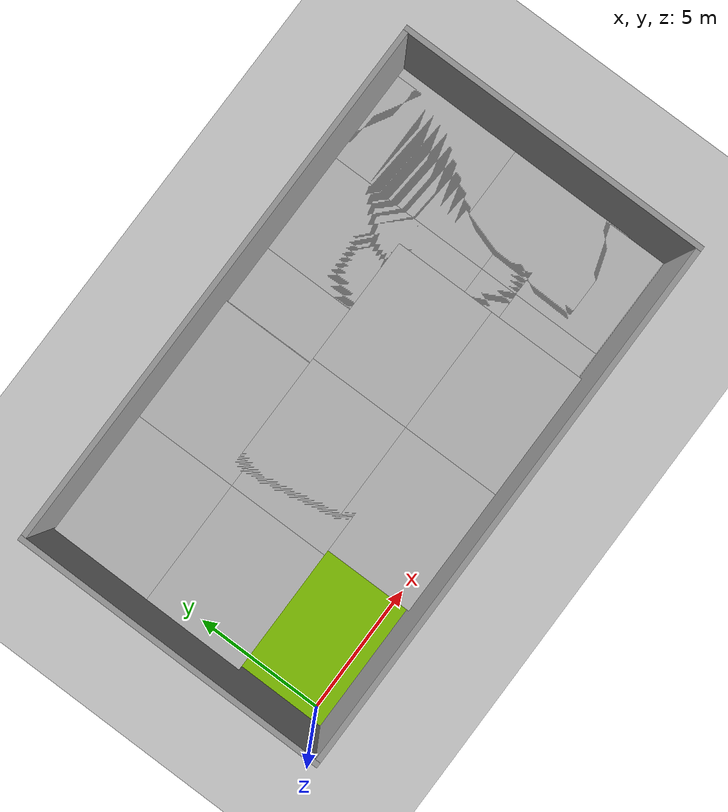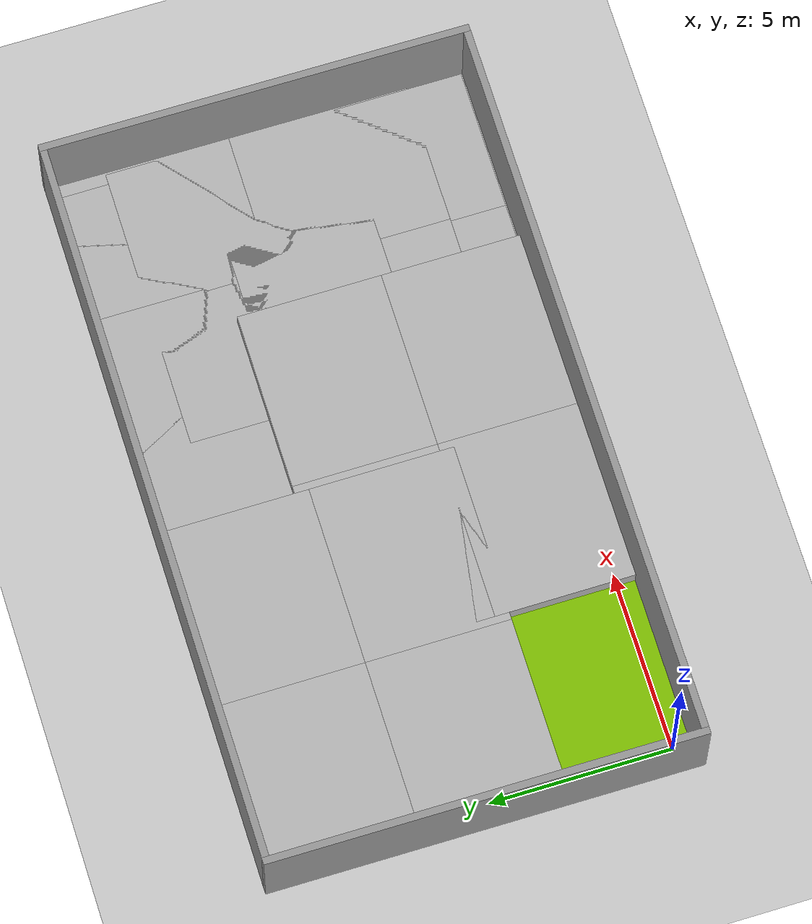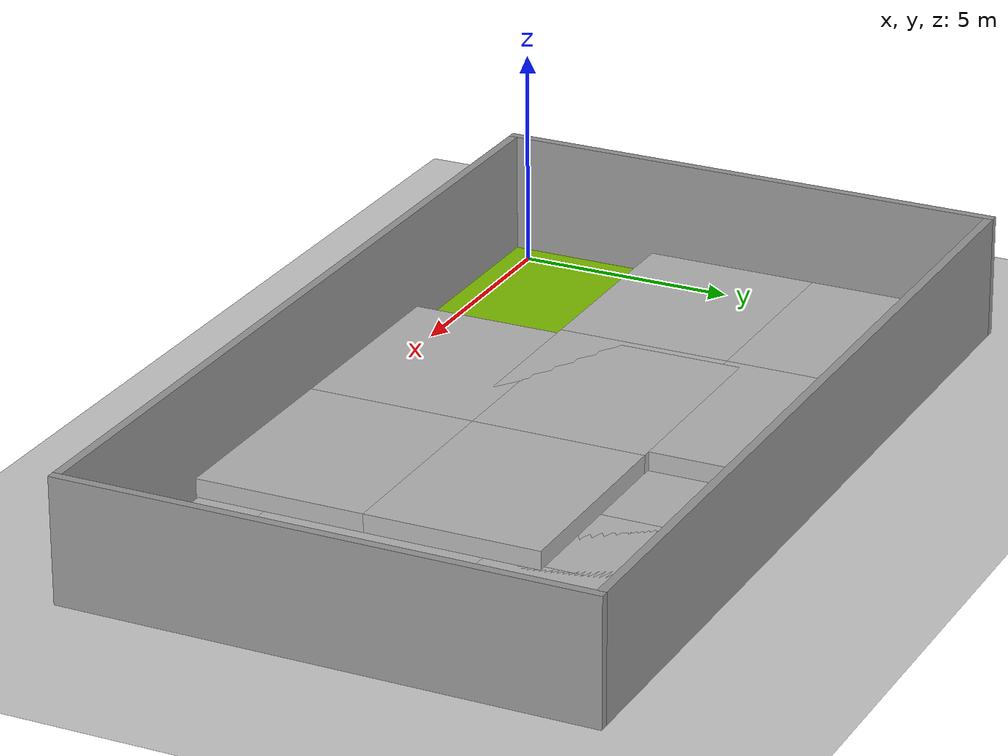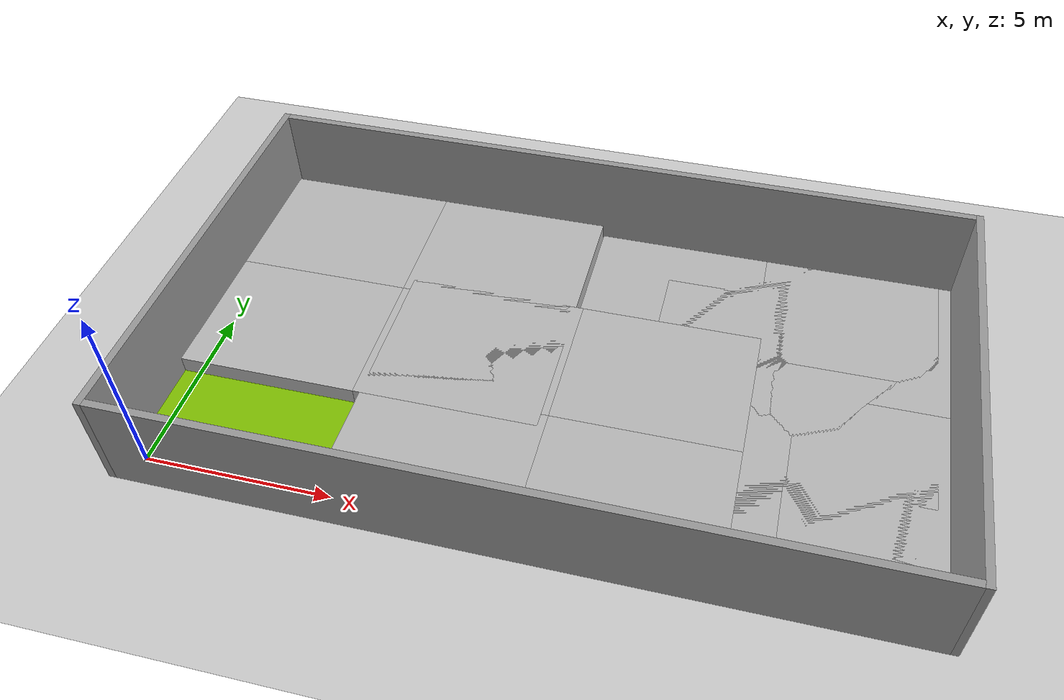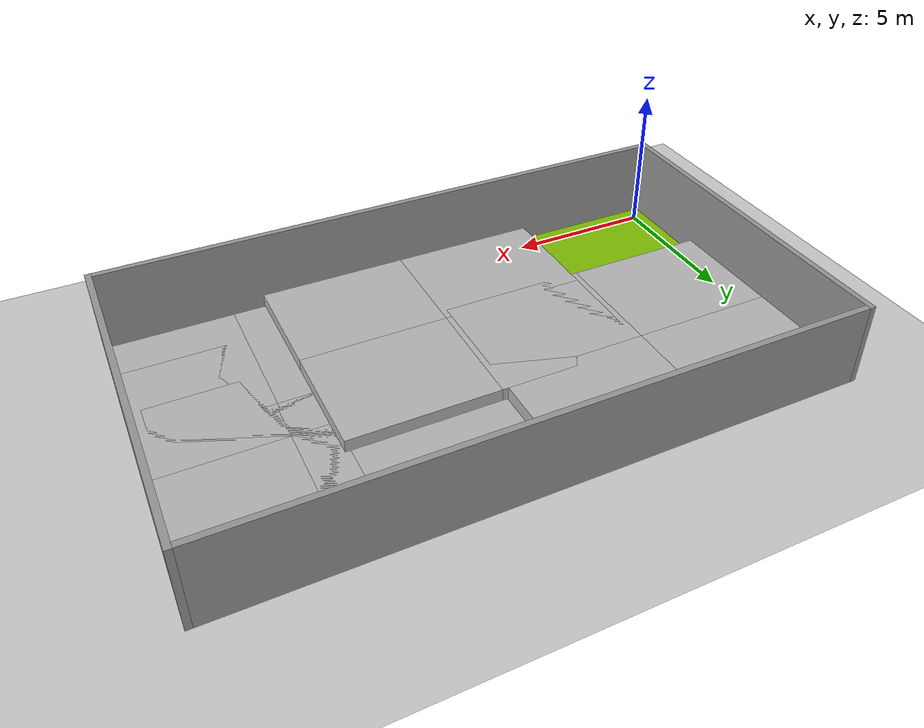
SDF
<sdf version="1.6">
 <world name="default">
  <light name="sun" type="directional">
   <pose>0 0 10 0 -0 0</pose>
   <diffuse>0.8 0.8 0.8 1</diffuse>
   <specular>0.2 0.2 0.2 1</specular>
   <attenuation>
    <range>1000</range>
    <constant>0.9</constant>
    <linear>0.01</linear>
    <quadratic>0.001</quadratic>
   </attenuation>
   <direction>-0.5 0.1 -0.9</direction>
  </light>
  <model name="ground_plane">
   <static>1</static>
   <link name="link">
    <collision name="collision">
     <geometry><plane><normal>0 0 1</normal><size>100 100</size></plane></geometry>
     <surface><friction><ode><mu>100</mu><mu2>50</mu2></ode></friction></surface>
    </collision>
    <visual name="visual">
     <cast_shadows>0</cast_shadows>
     <geometry><plane><normal>0 0 1</normal><size>100 100</size></plane></geometry>
     <material>
      <script><uri>file://media/materials/scripts/gazebo.material</uri><name>Gazebo/Grey</name></script>
     </material>
    </visual>
   </link>
  </model>
  <gravity>0 0 -9.8</gravity>
  <magnetic_field>6e-06 2.3e-05 -4.2e-05</magnetic_field>
  <atmosphere type="adiabatic"/>
  <physics name="default_physics" default="0" type="ode">
   <max_step_size>0.001</max_step_size>
   <real_time_factor>1</real_time_factor>
   <real_time_update_rate>1000</real_time_update_rate>
  </physics>
  <scene><ambient>0.4 0.4 0.4 1</ambient><background>0.7 0.7 0.7 1</background><shadows>1</shadows></scene>
  <audio><device>default</device></audio>
  <spherical_coordinates>
   <surface_model>EARTH_WGS84</surface_model>
   <latitude_deg>0</latitude_deg>
   <longitude_deg>0</longitude_deg>
   <elevation>0</elevation>
   <heading_deg>0</heading_deg>
  </spherical_coordinates>
  <model name="grey_wall_extended">
   <link name="link">
    <pose>0 0 1.4 0 -0 0</pose>
    <inertial>
     <inertia><ixx>0</ixx><ixy>0</ixy><ixz>0</ixz><iyy>0</iyy><iyz>0</iyz><izz>0</izz></inertia>
     <mass>0</mass>
    </inertial>
    <visual name="visual">
     <cast_shadows>0</cast_shadows>
     <geometry><box><size>20.2467 0.2 2.8</size></box></geometry>
     <material>
      <script>
       <uri>model://grey_wall/materials/scripts</uri>
       <uri>model://grey_wall/materials/textures</uri>
       <name>vrc/grey_wall</name>
      </script>
     </material>
    </visual>
    <collision name="collision">
     <geometry><box><size>20.2467 0.2 2.8</size></box></geometry>
     <surface>
      <friction>
       <ode><mu>1</mu><mu2>1</mu2><fdir1>0 0 0</fdir1><slip1>0</slip1><slip2>0</slip2></ode>
       <torsional>
        <coefficient>1</coefficient>
        <patch_radius>0</patch_radius>
        <surface_radius>0</surface_radius>
        <use_patch_radius>1</use_patch_radius>
        <ode><slip>0</slip></ode>
       </torsional>
      </friction>
      <bounce><restitution_coefficient>0</restitution_coefficient><threshold>1e+06</threshold></bounce>
      <contact>
       <collide_without_contact>0</collide_without_contact>
       <collide_without_contact_bitmask>1</collide_without_contact_bitmask>
       <collide_bitmask>1</collide_bitmask>
       <ode>
        <soft_cfm>0</soft_cfm>
        <soft_erp>0.2</soft_erp>
        <kp>1e+13</kp>
        <kd>1</kd>
        <max_vel>0.01</max_vel>
        <min_depth>0</min_depth>
       </ode>
       <bullet>
        <split_impulse>1</split_impulse>
        <split_impulse_penetration_threshold>-0.01</split_impulse_penetration_threshold>
        <soft_cfm>0</soft_cfm>
        <soft_erp>0.2</soft_erp>
        <kp>1e+13</kp>
        <kd>1</kd>
       </bullet>
      </contact>
     </surface>
    </collision>
   </link>
   <static>1</static>
   <pose>9.70633 11.1221 0 0 -0 0</pose>
  </model>
  <model name="grey_wall_extended_0">
   <link name="link">
    <pose>0 0 1.4 0 -0 0</pose>
    <inertial>
     <inertia><ixx>0</ixx><ixy>0</ixy><ixz>0</ixz><iyy>0</iyy><iyz>0</iyz><izz>0</izz></inertia>
     <mass>0</mass>
    </inertial>
    <visual name="visual">
     <cast_shadows>0</cast_shadows>
     <geometry><box><size>20.2467 0.2 2.8</size></box></geometry>
     <material>
      <script>
       <uri>model://grey_wall/materials/scripts</uri>
       <uri>model://grey_wall/materials/textures</uri>
       <name>vrc/grey_wall</name>
      </script>
     </material>
    </visual>
    <collision name="collision">
     <geometry><box><size>20.2467 0.2 2.8</size></box></geometry>
     <surface>
      <friction>
       <ode><mu>1</mu><mu2>1</mu2><fdir1>0 0 0</fdir1><slip1>0</slip1><slip2>0</slip2></ode>
       <torsional>
        <coefficient>1</coefficient>
        <patch_radius>0</patch_radius>
        <surface_radius>0</surface_radius>
        <use_patch_radius>1</use_patch_radius>
        <ode><slip>0</slip></ode>
       </torsional>
      </friction>
      <bounce><restitution_coefficient>0</restitution_coefficient><threshold>1e+06</threshold></bounce>
      <contact>
       <collide_without_contact>0</collide_without_contact>
       <collide_without_contact_bitmask>1</collide_without_contact_bitmask>
       <collide_bitmask>1</collide_bitmask>
       <ode>
        <soft_cfm>0</soft_cfm>
        <soft_erp>0.2</soft_erp>
        <kp>1e+13</kp>
        <kd>1</kd>
        <max_vel>0.01</max_vel>
        <min_depth>0</min_depth>
       </ode>
       <bullet>
        <split_impulse>1</split_impulse>
        <split_impulse_penetration_threshold>-0.01</split_impulse_penetration_threshold>
        <soft_cfm>0</soft_cfm>
        <soft_erp>0.2</soft_erp>
        <kp>1e+13</kp>
        <kd>1</kd>
       </bullet>
      </contact>
     </surface>
    </collision>
   </link>
   <static>1</static>
   <pose>9.67012 -0.596726 0 0 -0 0</pose>
  </model>
  <model name="grey_wall_extended_2_0">
   <link name="link">
    <pose>4.15817 -8.6e-05 1.4 0 -0 0</pose>
    <inertial>
     <inertia><ixx>0</ixx><ixy>0</ixy><ixz>0</ixz><iyy>0</iyy><iyz>0</iyz><izz>0</izz></inertia>
     <mass>0</mass>
    </inertial>
    <visual name="visual">
     <cast_shadows>0</cast_shadows>
     <geometry><box><size>11.9182 0.2 2.8</size></box></geometry>
     <material>
      <script>
       <uri>model://grey_wall/materials/scripts</uri>
       <uri>model://grey_wall/materials/textures</uri>
       <name>vrc/grey_wall</name>
      </script>
     </material>
    </visual>
    <collision name="collision">
     <geometry><box><size>11.9182 0.2 2.8</size></box></geometry>
     <surface>
      <friction>
       <ode><mu>1</mu><mu2>1</mu2><fdir1>0 0 0</fdir1><slip1>0</slip1><slip2>0</slip2></ode>
       <torsional>
        <coefficient>1</coefficient>
        <patch_radius>0</patch_radius>
        <surface_radius>0</surface_radius>
        <use_patch_radius>1</use_patch_radius>
        <ode><slip>0</slip></ode>
       </torsional>
      </friction>
      <bounce><restitution_coefficient>0</restitution_coefficient><threshold>1e+06</threshold></bounce>
      <contact>
       <collide_without_contact>0</collide_without_contact>
       <collide_without_contact_bitmask>1</collide_without_contact_bitmask>
       <collide_bitmask>1</collide_bitmask>
       <ode>
        <soft_cfm>0</soft_cfm>
        <soft_erp>0.2</soft_erp>
        <kp>1e+13</kp>
        <kd>1</kd>
        <max_vel>0.01</max_vel>
        <min_depth>0</min_depth>
       </ode>
       <bullet>
        <split_impulse>1</split_impulse>
        <split_impulse_penetration_threshold>-0.01</split_impulse_penetration_threshold>
        <soft_cfm>0</soft_cfm>
        <soft_erp>0.2</soft_erp>
        <kp>1e+13</kp>
        <kd>1</kd>
       </bullet>
      </contact>
     </surface>
    </collision>
   </link>
   <static>1</static>
   <pose>-0.518256 9.4203 0 0 0 -1.57367</pose>
  </model>
  <model name="grey_wall_extended_2_0_clone">
   <link name="link">
    <pose>4.15817 -8.6e-05 1.4 0 -0 0</pose>
    <inertial>
     <inertia><ixx>0</ixx><ixy>0</ixy><ixz>0</ixz><iyy>0</iyy><iyz>0</iyz><izz>0</izz></inertia>
     <mass>0</mass>
    </inertial>
    <visual name="visual">
     <cast_shadows>0</cast_shadows>
     <geometry><box><size>11.9182 0.2 2.8</size></box></geometry>
     <material>
      <script>
       <uri>model://grey_wall/materials/scripts</uri>
       <uri>model://grey_wall/materials/textures</uri>
       <name>vrc/grey_wall</name>
      </script>
     </material>
    </visual>
    <collision name="collision">
     <geometry><box><size>11.9182 0.2 2.8</size></box></geometry>
     <surface>
      <friction>
       <ode><mu>1</mu><mu2>1</mu2><fdir1>0 0 0</fdir1><slip1>0</slip1><slip2>0</slip2></ode>
       <torsional>
        <coefficient>1</coefficient>
        <patch_radius>0</patch_radius>
        <surface_radius>0</surface_radius>
        <use_patch_radius>1</use_patch_radius>
        <ode><slip>0</slip></ode>
       </torsional>
      </friction>
      <bounce><restitution_coefficient>0</restitution_coefficient><threshold>1e+06</threshold></bounce>
      <contact>
       <collide_without_contact>0</collide_without_contact>
       <collide_without_contact_bitmask>1</collide_without_contact_bitmask>
       <collide_bitmask>1</collide_bitmask>
       <ode>
        <soft_cfm>0</soft_cfm>
        <soft_erp>0.2</soft_erp>
        <kp>1e+13</kp>
        <kd>1</kd>
        <max_vel>0.01</max_vel>
        <min_depth>0</min_depth>
       </ode>
       <bullet>
        <split_impulse>1</split_impulse>
        <split_impulse_penetration_threshold>-0.01</split_impulse_penetration_threshold>
        <soft_cfm>0</soft_cfm>
        <soft_erp>0.2</soft_erp>
        <kp>1e+13</kp>
        <kd>1</kd>
       </bullet>
      </contact>
     </surface>
    </collision>
   </link>
   <static>1</static>
   <pose>19.9134 9.42377 0 0 0 -1.57367</pose>
  </model>
  <model name="mud_box">
   <static>1</static>
   <link name="link">
    <collision name="collision"><geometry><box><size>8 10 0.2</size></box></geometry></collision>
    <visual name="visual_1">
     <pose>-2 2.5 0 0 -0 0</pose>
     <cast_shadows>0</cast_shadows>
     <geometry><box><size>4 5 0.2</size></box></geometry>
     <material>
      <script>
       <uri>model://mud_box/materials/scripts</uri>
       <uri>model://mud_box/materials/textures</uri>
       <name>vrc/mud</name>
      </script>
     </material>
    </visual>
    <visual name="visual_2">
     <pose>2 2.5 0 0 -0 0</pose>
     <cast_shadows>0</cast_shadows>
     <geometry><box><size>4 5 0.2</size></box></geometry>
     <material>
      <script>
       <uri>model://mud_box/materials/scripts</uri>
       <uri>model://mud_box/materials/textures</uri>
       <name>vrc/mud</name>
      </script>
     </material>
    </visual>
    <visual name="visual_3">
     <pose>2 -2.5 0 0 -0 0</pose>
     <cast_shadows>0</cast_shadows>
     <geometry><box><size>4 5 0.2</size></box></geometry>
     <material>
      <script>
       <uri>model://mud_box/materials/scripts</uri>
       <uri>model://mud_box/materials/textures</uri>
       <name>vrc/mud</name>
      </script>
     </material>
    </visual>
    <visual name="visual_4">
     <pose>-2 -2.5 0 0 -0 0</pose>
     <cast_shadows>0</cast_shadows>
     <geometry><box><size>4 5 0.2</size></box></geometry>
     <material>
      <script>
       <uri>model://mud_box/materials/scripts</uri>
       <uri>model://mud_box/materials/textures</uri>
       <name>vrc/mud</name>
      </script>
     </material>
    </visual>
   </link>
   <pose>15.7565 4.54744 0 0 -0 0</pose>
  </model>
  <model name="asphalt_plane">
   <static>1</static>
   <link name="link">
    <collision name="collision"><geometry><box><size>15 5 0.1</size></box></geometry></collision>
    <visual name="visual">
     <cast_shadows>0</cast_shadows>
     <geometry><box><size>15 5 0.1</size></box></geometry>
     <material><ambient>0.5 0.75 0 1</ambient></material>
    </visual>
   </link>
   <pose>7.04472 1.99775 0 0 -0 0</pose>
  </model>
  <model name="mud_box_0_clone">
   <static>1</static>
   <link name="link">
    <collision name="collision"><geometry><box><size>8 10 0.2</size></box></geometry></collision>
    <visual name="visual_1">
     <pose>-2 2.5 0 0 -0 0</pose>
     <cast_shadows>0</cast_shadows>
     <geometry><box><size>4 5 0.2</size></box></geometry>
     <material>
      <script>
       <uri>model://mud_box/materials/scripts</uri>
       <uri>model://mud_box/materials/textures</uri>
       <name>vrc/mud</name>
      </script>
     </material>
    </visual>
    <visual name="visual_2">
     <pose>2 2.5 0 0 -0 0</pose>
     <cast_shadows>0</cast_shadows>
     <geometry><box><size>4 5 0.2</size></box></geometry>
     <material>
      <script>
       <uri>model://mud_box/materials/scripts</uri>
       <uri>model://mud_box/materials/textures</uri>
       <name>vrc/mud</name>
      </script>
     </material>
    </visual>
    <visual name="visual_3">
     <pose>2 -2.5 0 0 -0 0</pose>
     <cast_shadows>0</cast_shadows>
     <geometry><box><size>4 5 0.2</size></box></geometry>
     <material>
      <script>
       <uri>model://mud_box/materials/scripts</uri>
       <uri>model://mud_box/materials/textures</uri>
       <name>vrc/mud</name>
      </script>
     </material>
    </visual>
    <visual name="visual_4">
     <pose>-2 -2.5 0 0 -0 0</pose>
     <cast_shadows>0</cast_shadows>
     <geometry><box><size>4 5 0.2</size></box></geometry>
     <material>
      <script>
       <uri>model://mud_box/materials/scripts</uri>
       <uri>model://mud_box/materials/textures</uri>
       <name>vrc/mud</name>
      </script>
     </material>
    </visual>
   </link>
   <pose>14.4851 7.0423 0 0 0 -1.56709</pose>
  </model>
  <model name="mud_box_clone">
   <static>1</static>
   <link name="link">
    <collision name="collision"><geometry><box><size>8 10 0.2</size></box></geometry></collision>
    <visual name="visual_1">
     <pose>-2 2.5 0 0 -0 0</pose>
     <cast_shadows>0</cast_shadows>
     <geometry><box><size>4 5 0.2</size></box></geometry>
     <material>
      <script>
       <uri>model://mud_box/materials/scripts</uri>
       <uri>model://mud_box/materials/textures</uri>
       <name>vrc/mud</name>
      </script>
     </material>
    </visual>
    <visual name="visual_2">
     <pose>2 2.5 0 0 -0 0</pose>
     <cast_shadows>0</cast_shadows>
     <geometry><box><size>4 5 0.2</size></box></geometry>
     <material>
      <script>
       <uri>model://mud_box/materials/scripts</uri>
       <uri>model://mud_box/materials/textures</uri>
       <name>vrc/mud</name>
      </script>
     </material>
    </visual>
    <visual name="visual_3">
     <pose>2 -2.5 0 0 -0 0</pose>
     <cast_shadows>0</cast_shadows>
     <geometry><box><size>4 5 0.2</size></box></geometry>
     <material>
      <script>
       <uri>model://mud_box/materials/scripts</uri>
       <uri>model://mud_box/materials/textures</uri>
       <name>vrc/mud</name>
      </script>
     </material>
    </visual>
    <visual name="visual_4">
     <pose>-2 -2.5 0 0 -0 0</pose>
     <cast_shadows>0</cast_shadows>
     <geometry><box><size>4 5 0.2</size></box></geometry>
     <material>
      <script>
       <uri>model://mud_box/materials/scripts</uri>
       <uri>model://mud_box/materials/textures</uri>
       <name>vrc/mud</name>
      </script>
     </material>
    </visual>
   </link>
   <pose>15.8176 6.08653 0 0 -0 0</pose>
  </model>
  <model name="mud_box_up">
   <link name="link">
    <inertial>
     <inertia><ixx>0</ixx><ixy>0</ixy><ixz>0</ixz><iyy>0</iyy><iyz>0</iyz><izz>0</izz></inertia>
     <mass>0</mass>
    </inertial>
    <visual name="visual_1">
     <pose>-2 2.5 0 0 -0 0</pose>
     <cast_shadows>0</cast_shadows>
     <geometry><box><size>4 5 1.0398</size></box></geometry>
     <material>
      <script>
       <uri>model://mud_box/materials/scripts</uri>
       <uri>model://mud_box/materials/textures</uri>
       <name>vrc/mud</name>
      </script>
     </material>
    </visual>
    <visual name="visual_2">
     <pose>2 2.5 0 0 -0 0</pose>
     <cast_shadows>0</cast_shadows>
     <geometry><box><size>4 5 1.0398</size></box></geometry>
     <material>
      <script>
       <uri>model://mud_box/materials/scripts</uri>
       <uri>model://mud_box/materials/textures</uri>
       <name>vrc/mud</name>
      </script>
     </material>
    </visual>
    <visual name="visual_3">
     <pose>2 -2.5 0 0 -0 0</pose>
     <cast_shadows>0</cast_shadows>
     <geometry><box><size>4 5 1.0398</size></box></geometry>
     <material>
      <script>
       <uri>model://mud_box/materials/scripts</uri>
       <uri>model://mud_box/materials/textures</uri>
       <name>vrc/mud</name>
      </script>
     </material>
    </visual>
    <visual name="visual_4">
     <pose>-2 -2.5 0 0 -0 0</pose>
     <cast_shadows>0</cast_shadows>
     <geometry><box><size>4 5 1.0398</size></box></geometry>
     <material>
      <script>
       <uri>model://mud_box/materials/scripts</uri>
       <uri>model://mud_box/materials/textures</uri>
       <name>vrc/mud</name>
      </script>
     </material>
    </visual>
    <collision name="collision">
     <geometry><box><size>8 10 1.0398</size></box></geometry>
     <surface>
      <friction>
       <ode><mu>1</mu><mu2>1</mu2><fdir1>0 0 0</fdir1><slip1>0</slip1><slip2>0</slip2></ode>
       <torsional>
        <coefficient>1</coefficient>
        <patch_radius>0</patch_radius>
        <surface_radius>0</surface_radius>
        <use_patch_radius>1</use_patch_radius>
        <ode><slip>0</slip></ode>
       </torsional>
      </friction>
      <bounce><restitution_coefficient>0</restitution_coefficient><threshold>1e+06</threshold></bounce>
      <contact>
       <collide_without_contact>0</collide_without_contact>
       <collide_without_contact_bitmask>1</collide_without_contact_bitmask>
       <collide_bitmask>1</collide_bitmask>
       <ode>
        <soft_cfm>0</soft_cfm>
        <soft_erp>0.2</soft_erp>
        <kp>1e+13</kp>
        <kd>1</kd>
        <max_vel>0.01</max_vel>
        <min_depth>0</min_depth>
       </ode>
       <bullet>
        <split_impulse>1</split_impulse>
        <split_impulse_penetration_threshold>-0.01</split_impulse_penetration_threshold>
        <soft_cfm>0</soft_cfm>
        <soft_erp>0.2</soft_erp>
        <kp>1e+13</kp>
        <kd>1</kd>
       </bullet>
      </contact>
     </surface>
    </collision>
   </link>
   <static>1</static>
   <pose>9.66279 3.3756 0 0 0 -1.56912</pose>
  </model>
  <model name="mud_box_up_clone">
   <link name="link">
    <inertial>
     <inertia><ixx>0</ixx><ixy>0</ixy><ixz>0</ixz><iyy>0</iyy><iyz>0</iyz><izz>0</izz></inertia>
     <mass>0</mass>
    </inertial>
    <visual name="visual_1">
     <pose>-2 2.5 0 0 -0 0</pose>
     <cast_shadows>0</cast_shadows>
     <geometry><box><size>4 5 1.0398</size></box></geometry>
     <material>
      <script>
       <uri>model://mud_box/materials/scripts</uri>
       <uri>model://mud_box/materials/textures</uri>
       <name>vrc/mud</name>
      </script>
     </material>
    </visual>
    <visual name="visual_2">
     <pose>2 2.5 0 0 -0 0</pose>
     <cast_shadows>0</cast_shadows>
     <geometry><box><size>4 5 1.0398</size></box></geometry>
     <material>
      <script>
       <uri>model://mud_box/materials/scripts</uri>
       <uri>model://mud_box/materials/textures</uri>
       <name>vrc/mud</name>
      </script>
     </material>
    </visual>
    <visual name="visual_3">
     <pose>2 -2.5 0 0 -0 0</pose>
     <cast_shadows>0</cast_shadows>
     <geometry><box><size>4 5 1.0398</size></box></geometry>
     <material>
      <script>
       <uri>model://mud_box/materials/scripts</uri>
       <uri>model://mud_box/materials/textures</uri>
       <name>vrc/mud</name>
      </script>
     </material>
    </visual>
    <visual name="visual_4">
     <pose>-2 -2.5 0 0 -0 0</pose>
     <cast_shadows>0</cast_shadows>
     <geometry><box><size>4 5 1.0398</size></box></geometry>
     <material>
      <script>
       <uri>model://mud_box/materials/scripts</uri>
       <uri>model://mud_box/materials/textures</uri>
       <name>vrc/mud</name>
      </script>
     </material>
    </visual>
    <collision name="collision">
     <geometry><box><size>8 10 1.0398</size></box></geometry>
     <surface>
      <friction>
       <ode><mu>1</mu><mu2>1</mu2><fdir1>0 0 0</fdir1><slip1>0</slip1><slip2>0</slip2></ode>
       <torsional>
        <coefficient>1</coefficient>
        <patch_radius>0</patch_radius>
        <surface_radius>0</surface_radius>
        <use_patch_radius>1</use_patch_radius>
        <ode><slip>0</slip></ode>
       </torsional>
      </friction>
      <bounce><restitution_coefficient>0</restitution_coefficient><threshold>1e+06</threshold></bounce>
      <contact>
       <collide_without_contact>0</collide_without_contact>
       <collide_without_contact_bitmask>1</collide_without_contact_bitmask>
       <collide_bitmask>1</collide_bitmask>
       <ode>
        <soft_cfm>0</soft_cfm>
        <soft_erp>0.2</soft_erp>
        <kp>1e+13</kp>
        <kd>1</kd>
        <max_vel>0.01</max_vel>
        <min_depth>0</min_depth>
       </ode>
       <bullet>
        <split_impulse>1</split_impulse>
        <split_impulse_penetration_threshold>-0.01</split_impulse_penetration_threshold>
        <soft_cfm>0</soft_cfm>
        <soft_erp>0.2</soft_erp>
        <kp>1e+13</kp>
        <kd>1</kd>
       </bullet>
      </contact>
     </surface>
    </collision>
   </link>
   <static>1</static>
   <pose>4.45662 6.97429 0 0 0 -1.56912</pose>
  </model>
 </world>
</sdf>
